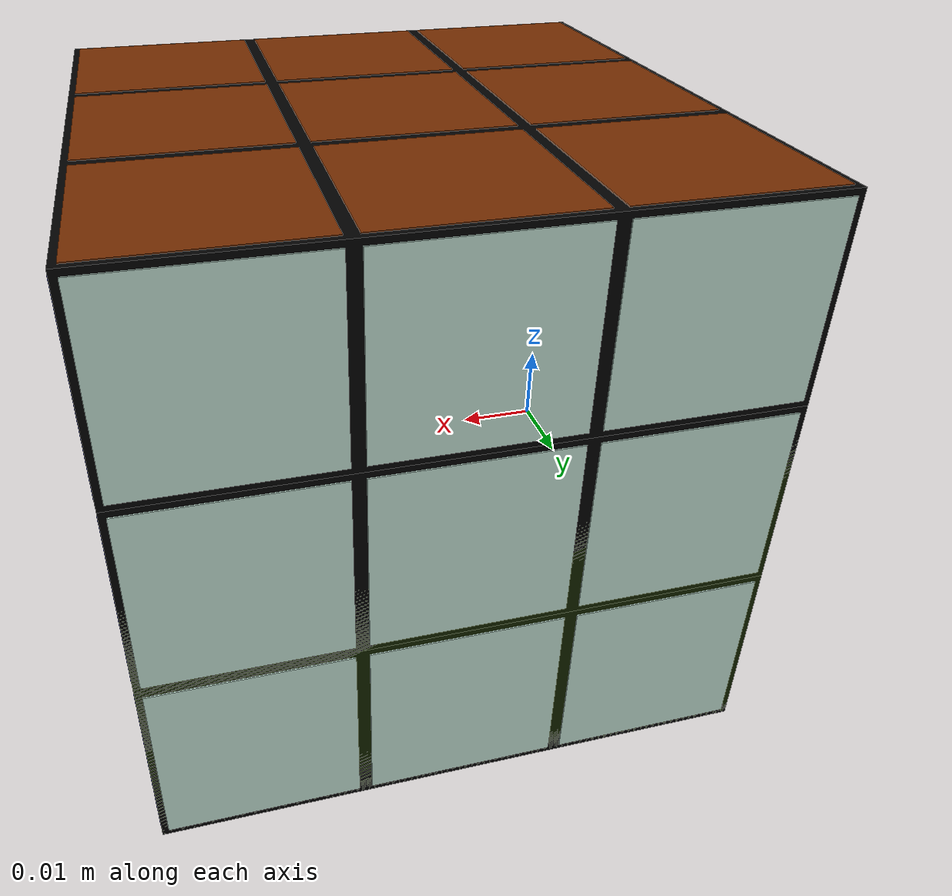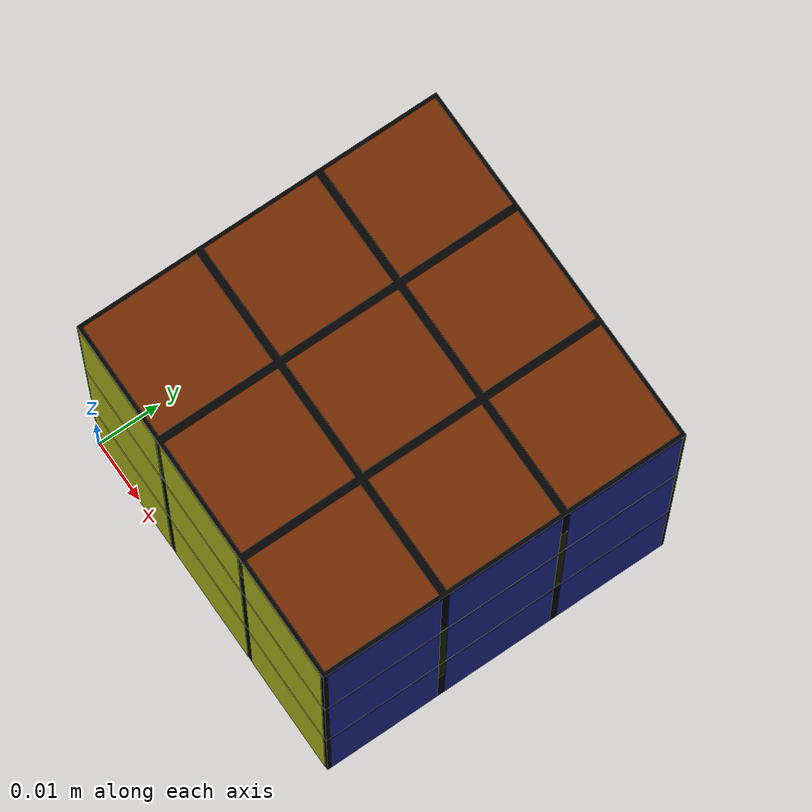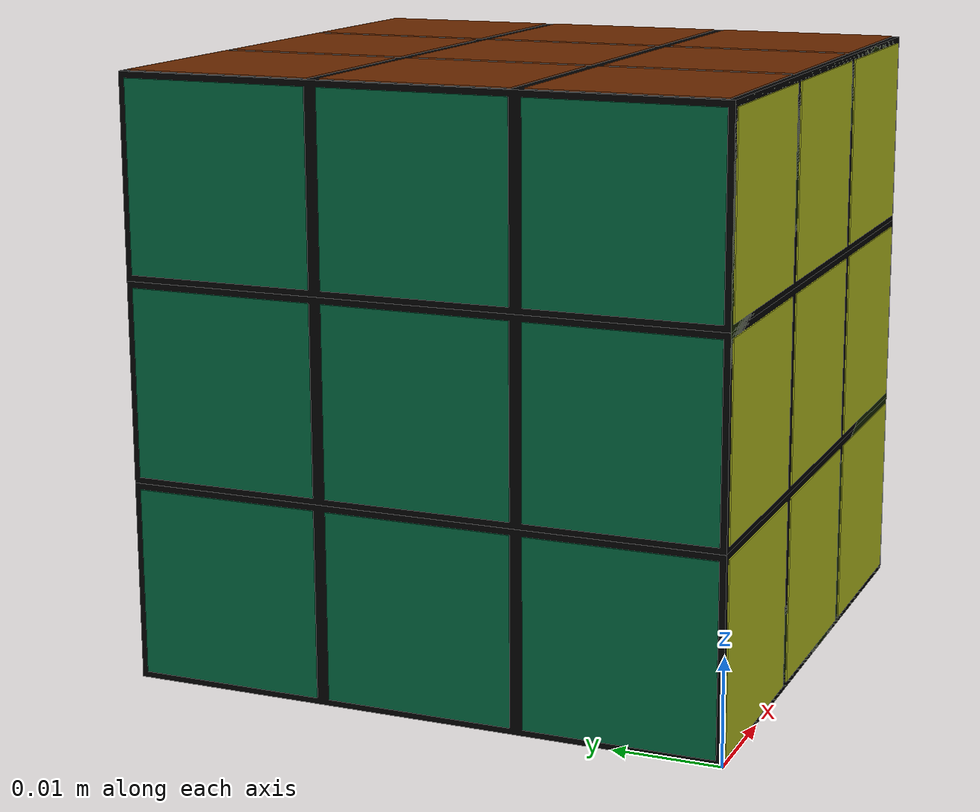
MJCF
<!-- AUTO GENERATED -->
<mujoco model="rubik-v1.50">
	<asset>
		<material name="MatRubik" specular="1" shininess=".3" rgba="0 0 0 1"></material>
		<material name="RedSticker_0_0" specular="1" shininess=".3" rgba="0.4392156862745098 0.16470588235294117 0.0 1"></material>
		<material name="BlueSticker_0_0" specular="1" shininess=".3" rgba="0.10196078431372549 0.1411764705882353 0.5098039215686274 1"></material>
		<material name="WhiteSticker_0_0" specular="1" shininess=".3" rgba="0.7411764705882353 0.8627450980392157 0.807843137254902 1"></material>
		<material name="OrangeSticker_0_0" specular="1" shininess=".3" rgba="0.5490196078431373 0.35294117647058826 0.0 1"></material>
		<material name="GreenSticker_0_0" specular="1" shininess=".3" rgba="0 0.3686274509803922 0.22745098039215686 1"></material>
		<material name="YellowSticker_0_0" specular="1" shininess=".3" rgba="0.6784313725490196 0.7137254901960784 0.10980392156862745 1"></material>
		<material name="RedSticker_0_1" specular="1" shininess=".3" rgba="0.4392156862745098 0.16470588235294117 0.0 1"></material>
		<material name="BlueSticker_0_1" specular="1" shininess=".3" rgba="0.10196078431372549 0.1411764705882353 0.5098039215686274 1"></material>
		<material name="WhiteSticker_0_1" specular="1" shininess=".3" rgba="0.7411764705882353 0.8627450980392157 0.807843137254902 1"></material>
		<material name="OrangeSticker_0_1" specular="1" shininess=".3" rgba="0.5490196078431373 0.35294117647058826 0.0 1"></material>
		<material name="GreenSticker_0_1" specular="1" shininess=".3" rgba="0 0.3686274509803922 0.22745098039215686 1"></material>
		<material name="YellowSticker_0_1" specular="1" shininess=".3" rgba="0.6784313725490196 0.7137254901960784 0.10980392156862745 1"></material>
		<material name="RedSticker_0_2" specular="1" shininess=".3" rgba="0.4392156862745098 0.16470588235294117 0.0 1"></material>
		<material name="BlueSticker_0_2" specular="1" shininess=".3" rgba="0.10196078431372549 0.1411764705882353 0.5098039215686274 1"></material>
		<material name="WhiteSticker_0_2" specular="1" shininess=".3" rgba="0.7411764705882353 0.8627450980392157 0.807843137254902 1"></material>
		<material name="OrangeSticker_0_2" specular="1" shininess=".3" rgba="0.5490196078431373 0.35294117647058826 0.0 1"></material>
		<material name="GreenSticker_0_2" specular="1" shininess=".3" rgba="0 0.3686274509803922 0.22745098039215686 1"></material>
		<material name="YellowSticker_0_2" specular="1" shininess=".3" rgba="0.6784313725490196 0.7137254901960784 0.10980392156862745 1"></material>
		<material name="RedSticker_1_0" specular="1" shininess=".3" rgba="0.4392156862745098 0.16470588235294117 0.0 1"></material>
		<material name="BlueSticker_1_0" specular="1" shininess=".3" rgba="0.10196078431372549 0.1411764705882353 0.5098039215686274 1"></material>
		<material name="WhiteSticker_1_0" specular="1" shininess=".3" rgba="0.7411764705882353 0.8627450980392157 0.807843137254902 1"></material>
		<material name="OrangeSticker_1_0" specular="1" shininess=".3" rgba="0.5490196078431373 0.35294117647058826 0.0 1"></material>
		<material name="GreenSticker_1_0" specular="1" shininess=".3" rgba="0 0.3686274509803922 0.22745098039215686 1"></material>
		<material name="YellowSticker_1_0" specular="1" shininess=".3" rgba="0.6784313725490196 0.7137254901960784 0.10980392156862745 1"></material>
		<material name="RedSticker_1_1" specular="1" shininess=".3" rgba="0.4392156862745098 0.16470588235294117 0.0 1"></material>
		<material name="BlueSticker_1_1" specular="1" shininess=".3" rgba="0.10196078431372549 0.1411764705882353 0.5098039215686274 1"></material>
		<material name="WhiteSticker_1_1" specular="1" shininess=".3" rgba="0.7411764705882353 0.8627450980392157 0.807843137254902 1"></material>
		<material name="OrangeSticker_1_1" specular="1" shininess=".3" rgba="0.5490196078431373 0.35294117647058826 0.0 1"></material>
		<material name="GreenSticker_1_1" specular="1" shininess=".3" rgba="0 0.3686274509803922 0.22745098039215686 1"></material>
		<material name="YellowSticker_1_1" specular="1" shininess=".3" rgba="0.6784313725490196 0.7137254901960784 0.10980392156862745 1"></material>
		<material name="RedSticker_1_2" specular="1" shininess=".3" rgba="0.4392156862745098 0.16470588235294117 0.0 1"></material>
		<material name="BlueSticker_1_2" specular="1" shininess=".3" rgba="0.10196078431372549 0.1411764705882353 0.5098039215686274 1"></material>
		<material name="WhiteSticker_1_2" specular="1" shininess=".3" rgba="0.7411764705882353 0.8627450980392157 0.807843137254902 1"></material>
		<material name="OrangeSticker_1_2" specular="1" shininess=".3" rgba="0.5490196078431373 0.35294117647058826 0.0 1"></material>
		<material name="GreenSticker_1_2" specular="1" shininess=".3" rgba="0 0.3686274509803922 0.22745098039215686 1"></material>
		<material name="YellowSticker_1_2" specular="1" shininess=".3" rgba="0.6784313725490196 0.7137254901960784 0.10980392156862745 1"></material>
		<material name="RedSticker_2_0" specular="1" shininess=".3" rgba="0.4392156862745098 0.16470588235294117 0.0 1"></material>
		<material name="BlueSticker_2_0" specular="1" shininess=".3" rgba="0.10196078431372549 0.1411764705882353 0.5098039215686274 1"></material>
		<material name="WhiteSticker_2_0" specular="1" shininess=".3" rgba="0.7411764705882353 0.8627450980392157 0.807843137254902 1"></material>
		<material name="OrangeSticker_2_0" specular="1" shininess=".3" rgba="0.5490196078431373 0.35294117647058826 0.0 1"></material>
		<material name="GreenSticker_2_0" specular="1" shininess=".3" rgba="0 0.3686274509803922 0.22745098039215686 1"></material>
		<material name="YellowSticker_2_0" specular="1" shininess=".3" rgba="0.6784313725490196 0.7137254901960784 0.10980392156862745 1"></material>
		<material name="RedSticker_2_1" specular="1" shininess=".3" rgba="0.4392156862745098 0.16470588235294117 0.0 1"></material>
		<material name="BlueSticker_2_1" specular="1" shininess=".3" rgba="0.10196078431372549 0.1411764705882353 0.5098039215686274 1"></material>
		<material name="WhiteSticker_2_1" specular="1" shininess=".3" rgba="0.7411764705882353 0.8627450980392157 0.807843137254902 1"></material>
		<material name="OrangeSticker_2_1" specular="1" shininess=".3" rgba="0.5490196078431373 0.35294117647058826 0.0 1"></material>
		<material name="GreenSticker_2_1" specular="1" shininess=".3" rgba="0 0.3686274509803922 0.22745098039215686 1"></material>
		<material name="YellowSticker_2_1" specular="1" shininess=".3" rgba="0.6784313725490196 0.7137254901960784 0.10980392156862745 1"></material>
		<material name="RedSticker_2_2" specular="1" shininess=".3" rgba="0.4392156862745098 0.16470588235294117 0.0 1"></material>
		<material name="BlueSticker_2_2" specular="1" shininess=".3" rgba="0.10196078431372549 0.1411764705882353 0.5098039215686274 1"></material>
		<material name="WhiteSticker_2_2" specular="1" shininess=".3" rgba="0.7411764705882353 0.8627450980392157 0.807843137254902 1"></material>
		<material name="OrangeSticker_2_2" specular="1" shininess=".3" rgba="0.5490196078431373 0.35294117647058826 0.0 1"></material>
		<material name="GreenSticker_2_2" specular="1" shininess=".3" rgba="0 0.3686274509803922 0.22745098039215686 1"></material>
		<material name="YellowSticker_2_2" specular="1" shininess=".3" rgba="0.6784313725490196 0.7137254901960784 0.10980392156862745 1"></material>
	</asset>
	<worldbody>
		<body name="middle" pos=".0285 .0285 .0285">
			<geom name="middle" type="box" size=".0285 .0285 .0095" material="MatRubik" condim="4"></geom>
			<site name="center" pos="0 0 0" rgba="1 0 0 1" size="0.01 0.01 0.01"></site>
			<joint name="cube_tx" type="slide" axis="1 0 0" limited="false"></joint>
			<joint name="cube_ty" type="slide" axis="0 1 0" limited="false"></joint>
			<joint name="cube_tz" type="slide" axis="0 0 1" limited="false"></joint>
			<joint name="cube_rot" type="ball" limited="false"></joint>
			<body name="top" pos="0 0 .019">
				<geom name="top" type="box" size=".0285 .0285 .0095" material="MatRubik" condim="4"></geom>
				<joint name="face_top" type="hinge" axis="0 0 1" damping="0" frictionloss=".1" limited="false"></joint>
				<body name="sticker_top_0_0" pos="-0.019 -0.019 0.0095">
					<geom name="sticker_top_0_0" type="box" size="0.0089 0.0089 0.0001" conaffinity="0" contype="0" material="RedSticker_0_0"></geom>
				</body>
				<body name="sticker_top_0_1" pos="-0.019 0.0 0.0095">
					<geom name="sticker_top_0_1" type="box" size="0.0089 0.0089 0.0001" conaffinity="0" contype="0" material="RedSticker_0_1"></geom>
				</body>
				<body name="sticker_top_0_2" pos="-0.019 0.019 0.0095">
					<geom name="sticker_top_0_2" type="box" size="0.0089 0.0089 0.0001" conaffinity="0" contype="0" material="RedSticker_0_2"></geom>
				</body>
				<body name="sticker_top_1_0" pos="0.0 -0.019 0.0095">
					<geom name="sticker_top_1_0" type="box" size="0.0089 0.0089 0.0001" conaffinity="0" contype="0" material="RedSticker_1_0"></geom>
				</body>
				<body name="sticker_top_1_1" pos="0.0 0.0 0.0095">
					<geom name="sticker_top_1_1" type="box" size="0.0089 0.0089 0.0001" conaffinity="0" contype="0" material="RedSticker_1_1"></geom>
				</body>
				<body name="sticker_top_1_2" pos="0.0 0.019 0.0095">
					<geom name="sticker_top_1_2" type="box" size="0.0089 0.0089 0.0001" conaffinity="0" contype="0" material="RedSticker_1_2"></geom>
				</body>
				<body name="sticker_top_2_0" pos="0.019 -0.019 0.0095">
					<geom name="sticker_top_2_0" type="box" size="0.0089 0.0089 0.0001" conaffinity="0" contype="0" material="RedSticker_2_0"></geom>
				</body>
				<body name="sticker_top_2_1" pos="0.019 0.0 0.0095">
					<geom name="sticker_top_2_1" type="box" size="0.0089 0.0089 0.0001" conaffinity="0" contype="0" material="RedSticker_2_1"></geom>
				</body>
				<body name="sticker_top_2_2" pos="0.019 0.019 0.0095">
					<geom name="sticker_top_2_2" type="box" size="0.0089 0.0089 0.0001" conaffinity="0" contype="0" material="RedSticker_2_2"></geom>
				</body>
				<body name="sticker_side4_0_2" pos="0.0285 -0.019 0">
					<geom name="sticker_side4_0_2" type="box" size="0.0001 0.0089 0.0089" conaffinity="0" contype="0" material="BlueSticker_0_2"></geom>
				</body>
				<body name="sticker_side3_0_2" pos="-0.019 0.0285 0">
					<geom name="sticker_side3_0_2" type="box" size="0.0089 0.0001 0.0089" conaffinity="0" contype="0" material="WhiteSticker_0_2"></geom>
				</body>
				<body name="sticker_side2_0_2" pos="-0.0285 -0.019 0">
					<geom name="sticker_side2_0_2" type="box" size="0.0001 0.0089 0.0089" conaffinity="0" contype="0" material="GreenSticker_0_2"></geom>
				</body>
				<body name="sticker_side1_0_2" pos="-0.019 -0.0285 0">
					<geom name="sticker_side1_0_2" type="box" size="0.0089 0.0001 0.0089" conaffinity="0" contype="0" material="YellowSticker_0_2"></geom>
				</body>
				<body name="sticker_side4_1_2" pos="0.0285 0.0 0">
					<geom name="sticker_side4_1_2" type="box" size="0.0001 0.0089 0.0089" conaffinity="0" contype="0" material="BlueSticker_1_2"></geom>
				</body>
				<body name="sticker_side3_1_2" pos="0.0 0.0285 0">
					<geom name="sticker_side3_1_2" type="box" size="0.0089 0.0001 0.0089" conaffinity="0" contype="0" material="WhiteSticker_1_2"></geom>
				</body>
				<body name="sticker_side2_1_2" pos="-0.0285 0.0 0">
					<geom name="sticker_side2_1_2" type="box" size="0.0001 0.0089 0.0089" conaffinity="0" contype="0" material="GreenSticker_1_2"></geom>
				</body>
				<body name="sticker_side1_1_2" pos="0.0 -0.0285 0">
					<geom name="sticker_side1_1_2" type="box" size="0.0089 0.0001 0.0089" conaffinity="0" contype="0" material="YellowSticker_1_2"></geom>
				</body>
				<body name="sticker_side4_2_2" pos="0.0285 0.019 0">
					<geom name="sticker_side4_2_2" type="box" size="0.0001 0.0089 0.0089" conaffinity="0" contype="0" material="BlueSticker_2_2"></geom>
				</body>
				<body name="sticker_side3_2_2" pos="0.019 0.0285 0">
					<geom name="sticker_side3_2_2" type="box" size="0.0089 0.0001 0.0089" conaffinity="0" contype="0" material="WhiteSticker_2_2"></geom>
				</body>
				<body name="sticker_side2_2_2" pos="-0.0285 0.019 0">
					<geom name="sticker_side2_2_2" type="box" size="0.0001 0.0089 0.0089" conaffinity="0" contype="0" material="GreenSticker_2_2"></geom>
				</body>
				<body name="sticker_side1_2_2" pos="0.019 -0.0285 0">
					<geom name="sticker_side1_2_2" type="box" size="0.0089 0.0001 0.0089" conaffinity="0" contype="0" material="YellowSticker_2_2"></geom>
				</body>
			</body>
			<body name="bottom" pos="0 0 -.019">
				<geom name="bottom" type="box" size=".0285 .0285 .0095" material="MatRubik" condim="4"></geom>
				<joint name="face_bottom" type="hinge" axis="0 0 1" damping="0" frictionloss=".1" limited="false"></joint>
				<body name="sticker_side4_0_0" pos="0.0285 -0.019 0">
					<geom name="sticker_side4_0_0" type="box" size="0.0001 0.0089 0.0089" conaffinity="0" contype="0" material="BlueSticker_0_0"></geom>
				</body>
				<body name="sticker_side3_0_0" pos="-0.019 0.0285 0">
					<geom name="sticker_side3_0_0" type="box" size="0.0089 0.0001 0.0089" conaffinity="0" contype="0" material="WhiteSticker_0_0"></geom>
				</body>
				<body name="sticker_side2_0_0" pos="-0.0285 -0.019 0">
					<geom name="sticker_side2_0_0" type="box" size="0.0001 0.0089 0.0089" conaffinity="0" contype="0" material="GreenSticker_0_0"></geom>
				</body>
				<body name="sticker_side1_0_0" pos="-0.019 -0.0285 0">
					<geom name="sticker_side1_0_0" type="box" size="0.0089 0.0001 0.0089" conaffinity="0" contype="0" material="YellowSticker_0_0"></geom>
				</body>
				<body name="sticker_side4_1_0" pos="0.0285 0.0 0">
					<geom name="sticker_side4_1_0" type="box" size="0.0001 0.0089 0.0089" conaffinity="0" contype="0" material="BlueSticker_1_0"></geom>
				</body>
				<body name="sticker_side3_1_0" pos="0.0 0.0285 0">
					<geom name="sticker_side3_1_0" type="box" size="0.0089 0.0001 0.0089" conaffinity="0" contype="0" material="WhiteSticker_1_0"></geom>
				</body>
				<body name="sticker_side2_1_0" pos="-0.0285 0.0 0">
					<geom name="sticker_side2_1_0" type="box" size="0.0001 0.0089 0.0089" conaffinity="0" contype="0" material="GreenSticker_1_0"></geom>
				</body>
				<body name="sticker_side1_1_0" pos="0.0 -0.0285 0">
					<geom name="sticker_side1_1_0" type="box" size="0.0089 0.0001 0.0089" conaffinity="0" contype="0" material="YellowSticker_1_0"></geom>
				</body>
				<body name="sticker_side4_2_0" pos="0.0285 0.019 0">
					<geom name="sticker_side4_2_0" type="box" size="0.0001 0.0089 0.0089" conaffinity="0" contype="0" material="BlueSticker_2_0"></geom>
				</body>
				<body name="sticker_side3_2_0" pos="0.019 0.0285 0">
					<geom name="sticker_side3_2_0" type="box" size="0.0089 0.0001 0.0089" conaffinity="0" contype="0" material="WhiteSticker_2_0"></geom>
				</body>
				<body name="sticker_side2_2_0" pos="-0.0285 0.019 0">
					<geom name="sticker_side2_2_0" type="box" size="0.0001 0.0089 0.0089" conaffinity="0" contype="0" material="GreenSticker_2_0"></geom>
				</body>
				<body name="sticker_side1_2_0" pos="0.019 -0.0285 0">
					<geom name="sticker_side1_2_0" type="box" size="0.0089 0.0001 0.0089" conaffinity="0" contype="0" material="YellowSticker_2_0"></geom>
				</body>
				<body name="sticker_bottom_0_0" pos="-0.019 -0.019 -0.0095">
					<geom name="sticker_bottom_0_0" type="box" size="0.0089 0.0089 0.0001" conaffinity="0" contype="0" material="OrangeSticker_0_0"></geom>
				</body>
				<body name="sticker_bottom_0_1" pos="-0.019 0.0 -0.0095">
					<geom name="sticker_bottom_0_1" type="box" size="0.0089 0.0089 0.0001" conaffinity="0" contype="0" material="OrangeSticker_0_1"></geom>
				</body>
				<body name="sticker_bottom_0_2" pos="-0.019 0.019 -0.0095">
					<geom name="sticker_bottom_0_2" type="box" size="0.0089 0.0089 0.0001" conaffinity="0" contype="0" material="OrangeSticker_0_2"></geom>
				</body>
				<body name="sticker_bottom_1_0" pos="0.0 -0.019 -0.0095">
					<geom name="sticker_bottom_1_0" type="box" size="0.0089 0.0089 0.0001" conaffinity="0" contype="0" material="OrangeSticker_1_0"></geom>
				</body>
				<body name="sticker_bottom_1_1" pos="0.0 0.0 -0.0095">
					<geom name="sticker_bottom_1_1" type="box" size="0.0089 0.0089 0.0001" conaffinity="0" contype="0" material="OrangeSticker_1_1"></geom>
				</body>
				<body name="sticker_bottom_1_2" pos="0.0 0.019 -0.0095">
					<geom name="sticker_bottom_1_2" type="box" size="0.0089 0.0089 0.0001" conaffinity="0" contype="0" material="OrangeSticker_1_2"></geom>
				</body>
				<body name="sticker_bottom_2_0" pos="0.019 -0.019 -0.0095">
					<geom name="sticker_bottom_2_0" type="box" size="0.0089 0.0089 0.0001" conaffinity="0" contype="0" material="OrangeSticker_2_0"></geom>
				</body>
				<body name="sticker_bottom_2_1" pos="0.019 0.0 -0.0095">
					<geom name="sticker_bottom_2_1" type="box" size="0.0089 0.0089 0.0001" conaffinity="0" contype="0" material="OrangeSticker_2_1"></geom>
				</body>
				<body name="sticker_bottom_2_2" pos="0.019 0.019 -0.0095">
					<geom name="sticker_bottom_2_2" type="box" size="0.0089 0.0089 0.0001" conaffinity="0" contype="0" material="OrangeSticker_2_2"></geom>
				</body>
			</body>
			<body name="sticker_side4_0_1" pos="0.0285 -0.019 0">
				<geom name="sticker_side4_0_1" type="box" size="0.0001 0.0089 0.0089" conaffinity="0" contype="0" material="BlueSticker_0_1"></geom>
			</body>
			<body name="sticker_side3_0_1" pos="-0.019 0.0285 0">
				<geom name="sticker_side3_0_1" type="box" size="0.0089 0.0001 0.0089" conaffinity="0" contype="0" material="WhiteSticker_0_1"></geom>
			</body>
			<body name="sticker_side2_0_1" pos="-0.0285 -0.019 0">
				<geom name="sticker_side2_0_1" type="box" size="0.0001 0.0089 0.0089" conaffinity="0" contype="0" material="GreenSticker_0_1"></geom>
			</body>
			<body name="sticker_side1_0_1" pos="-0.019 -0.0285 0">
				<geom name="sticker_side1_0_1" type="box" size="0.0089 0.0001 0.0089" conaffinity="0" contype="0" material="YellowSticker_0_1"></geom>
			</body>
			<body name="sticker_side4_1_1" pos="0.0285 0.0 0">
				<geom name="sticker_side4_1_1" type="box" size="0.0001 0.0089 0.0089" conaffinity="0" contype="0" material="BlueSticker_1_1"></geom>
			</body>
			<body name="sticker_side3_1_1" pos="0.0 0.0285 0">
				<geom name="sticker_side3_1_1" type="box" size="0.0089 0.0001 0.0089" conaffinity="0" contype="0" material="WhiteSticker_1_1"></geom>
			</body>
			<body name="sticker_side2_1_1" pos="-0.0285 0.0 0">
				<geom name="sticker_side2_1_1" type="box" size="0.0001 0.0089 0.0089" conaffinity="0" contype="0" material="GreenSticker_1_1"></geom>
			</body>
			<body name="sticker_side1_1_1" pos="0.0 -0.0285 0">
				<geom name="sticker_side1_1_1" type="box" size="0.0089 0.0001 0.0089" conaffinity="0" contype="0" material="YellowSticker_1_1"></geom>
			</body>
			<body name="sticker_side4_2_1" pos="0.0285 0.019 0">
				<geom name="sticker_side4_2_1" type="box" size="0.0001 0.0089 0.0089" conaffinity="0" contype="0" material="BlueSticker_2_1"></geom>
			</body>
			<body name="sticker_side3_2_1" pos="0.019 0.0285 0">
				<geom name="sticker_side3_2_1" type="box" size="0.0089 0.0001 0.0089" conaffinity="0" contype="0" material="WhiteSticker_2_1"></geom>
			</body>
			<body name="sticker_side2_2_1" pos="-0.0285 0.019 0">
				<geom name="sticker_side2_2_1" type="box" size="0.0001 0.0089 0.0089" conaffinity="0" contype="0" material="GreenSticker_2_1"></geom>
			</body>
			<body name="sticker_side1_2_1" pos="0.019 -0.0285 0">
				<geom name="sticker_side1_2_1" type="box" size="0.0089 0.0001 0.0089" conaffinity="0" contype="0" material="YellowSticker_2_1"></geom>
			</body>
		</body>
		<body name="annotation:outer_bound" pos="0.0285 0.0285 0.0285">
			<geom conaffinity="0" contype="0" mass="0" pos="0 0 0" rgba="0.417022 0.720324 0.000114 0.1" size="0.0285 0.0285 0.0285" type="box"></geom>
		</body>
	</worldbody>
</mujoco>
